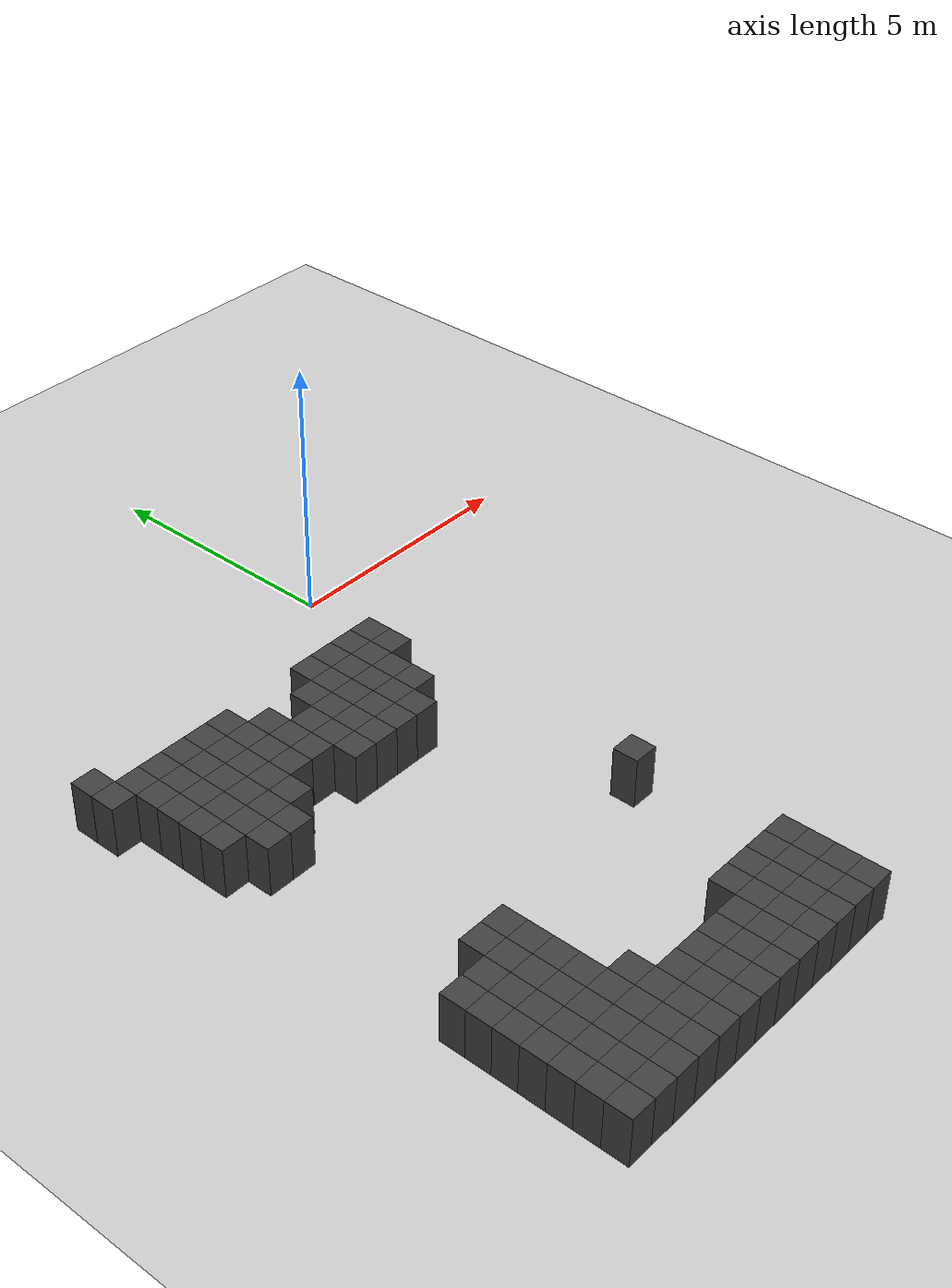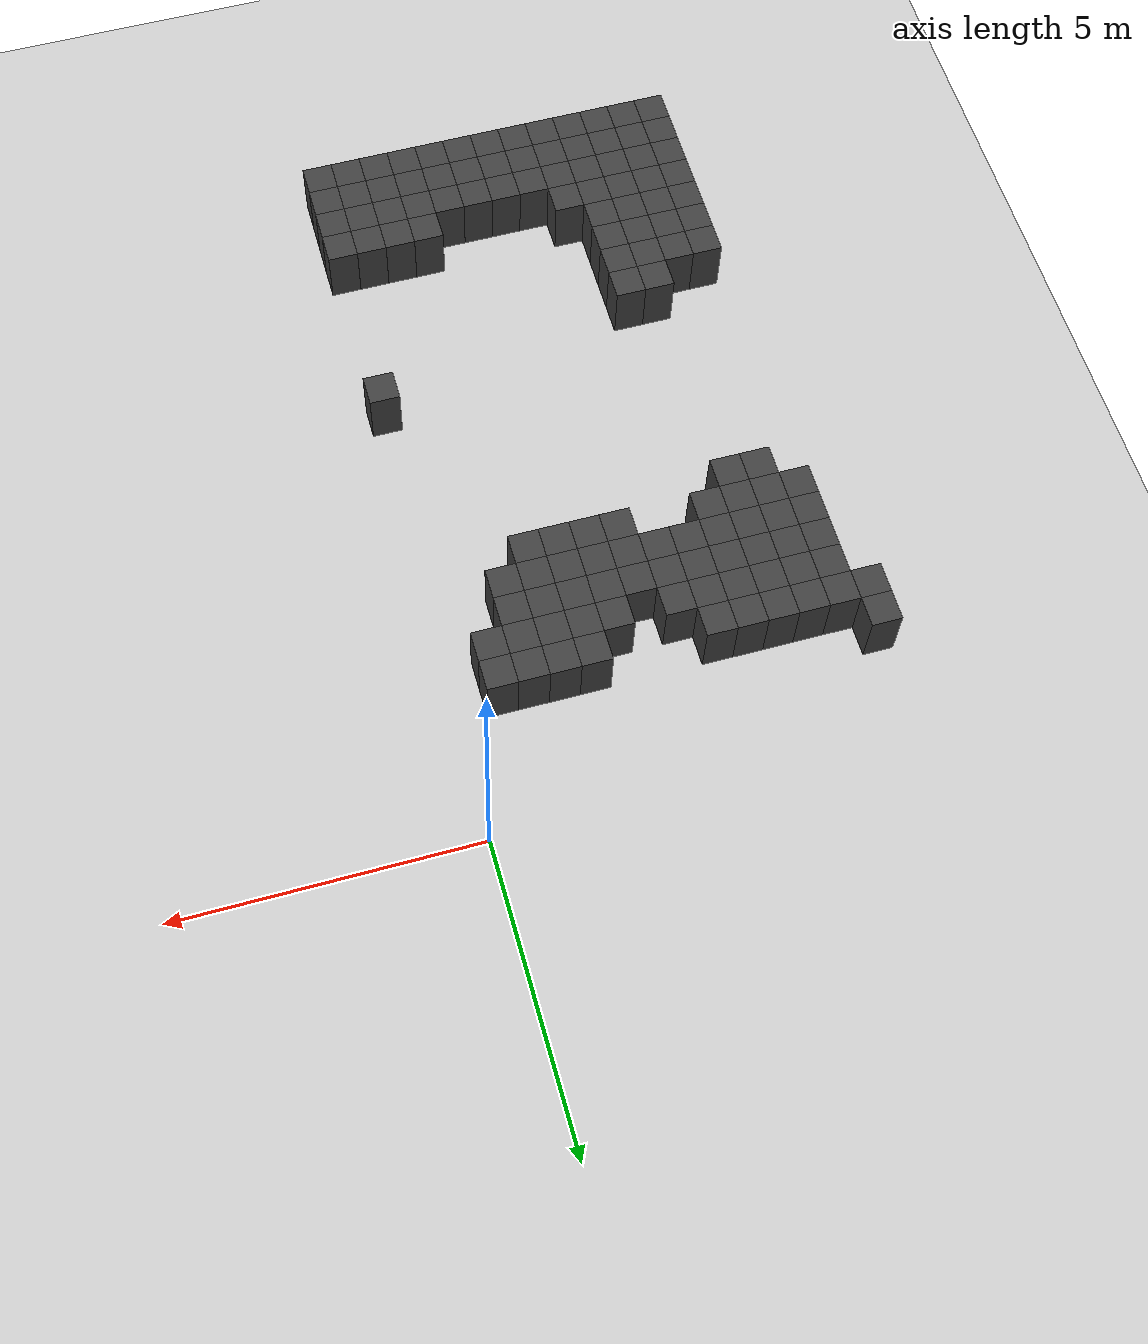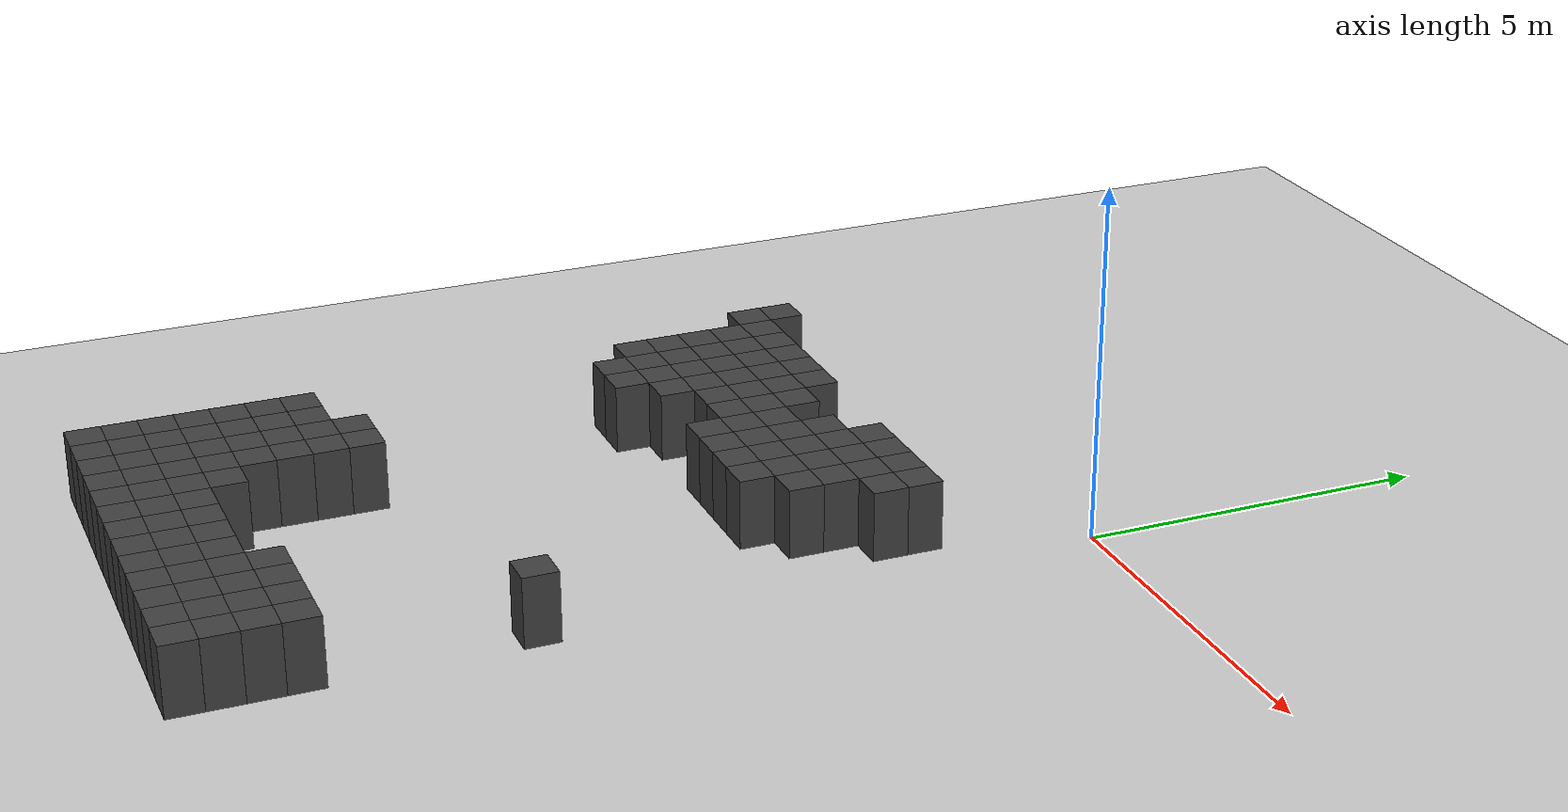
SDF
<sdf version="1.7">
 <world name="map_9061">
  <model name="ground_plane">
   <static>true</static>
   <link name="link">
    <collision name="collision">
     <geometry><plane><normal>0 0 1</normal><size>200 200</size></plane></geometry>
    </collision>
    <visual name="visual">
     <geometry><plane><normal>0 0 1</normal><size>200 200</size></plane></geometry>
     <material><ambient>0.8 0.8 0.8 1</ambient><diffuse>0.8 0.8 0.8 1</diffuse></material>
    </visual>
   </link>
  </model>
  <model name="maze_environment">
   <static>true</static>
   <link name="wall_474">
    <pose>-6.750 -1.750 0.500 0 0 0</pose>
    <collision name="col"><geometry><box><size>0.5 0.5 1.0</size></box></geometry></collision>
    <visual name="vis">
     <geometry><box><size>0.5 0.5 1.0</size></box></geometry>
     <material><ambient>0.15 0.15 0.15 1</ambient><diffuse>0.25 0.25 0.25 1</diffuse></material>
    </visual>
   </link>
   <link name="wall_488">
    <pose>-6.750 -2.250 0.500 0 0 0</pose>
    <collision name="col"><geometry><box><size>0.5 0.5 1.0</size></box></geometry></collision>
    <visual name="vis">
     <geometry><box><size>0.5 0.5 1.0</size></box></geometry>
     <material><ambient>0.15 0.15 0.15 1</ambient><diffuse>0.25 0.25 0.25 1</diffuse></material>
    </visual>
   </link>
   <link name="wall_489">
    <pose>-6.250 -2.250 0.500 0 0 0</pose>
    <collision name="col"><geometry><box><size>0.5 0.5 1.0</size></box></geometry></collision>
    <visual name="vis">
     <geometry><box><size>0.5 0.5 1.0</size></box></geometry>
     <material><ambient>0.15 0.15 0.15 1</ambient><diffuse>0.25 0.25 0.25 1</diffuse></material>
    </visual>
   </link>
   <link name="wall_490">
    <pose>-5.750 -2.250 0.500 0 0 0</pose>
    <collision name="col"><geometry><box><size>0.5 0.5 1.0</size></box></geometry></collision>
    <visual name="vis">
     <geometry><box><size>0.5 0.5 1.0</size></box></geometry>
     <material><ambient>0.15 0.15 0.15 1</ambient><diffuse>0.25 0.25 0.25 1</diffuse></material>
    </visual>
   </link>
   <link name="wall_491">
    <pose>-5.250 -2.250 0.500 0 0 0</pose>
    <collision name="col"><geometry><box><size>0.5 0.5 1.0</size></box></geometry></collision>
    <visual name="vis">
     <geometry><box><size>0.5 0.5 1.0</size></box></geometry>
     <material><ambient>0.15 0.15 0.15 1</ambient><diffuse>0.25 0.25 0.25 1</diffuse></material>
    </visual>
   </link>
   <link name="wall_492">
    <pose>-4.750 -2.250 0.500 0 0 0</pose>
    <collision name="col"><geometry><box><size>0.5 0.5 1.0</size></box></geometry></collision>
    <visual name="vis">
     <geometry><box><size>0.5 0.5 1.0</size></box></geometry>
     <material><ambient>0.15 0.15 0.15 1</ambient><diffuse>0.25 0.25 0.25 1</diffuse></material>
    </visual>
   </link>
   <link name="wall_493">
    <pose>-4.250 -2.250 0.500 0 0 0</pose>
    <collision name="col"><geometry><box><size>0.5 0.5 1.0</size></box></geometry></collision>
    <visual name="vis">
     <geometry><box><size>0.5 0.5 1.0</size></box></geometry>
     <material><ambient>0.15 0.15 0.15 1</ambient><diffuse>0.25 0.25 0.25 1</diffuse></material>
    </visual>
   </link>
   <link name="wall_494">
    <pose>-2.250 -2.250 0.500 0 0 0</pose>
    <collision name="col"><geometry><box><size>0.5 0.5 1.0</size></box></geometry></collision>
    <visual name="vis">
     <geometry><box><size>0.5 0.5 1.0</size></box></geometry>
     <material><ambient>0.15 0.15 0.15 1</ambient><diffuse>0.25 0.25 0.25 1</diffuse></material>
    </visual>
   </link>
   <link name="wall_495">
    <pose>-1.750 -2.250 0.500 0 0 0</pose>
    <collision name="col"><geometry><box><size>0.5 0.5 1.0</size></box></geometry></collision>
    <visual name="vis">
     <geometry><box><size>0.5 0.5 1.0</size></box></geometry>
     <material><ambient>0.15 0.15 0.15 1</ambient><diffuse>0.25 0.25 0.25 1</diffuse></material>
    </visual>
   </link>
   <link name="wall_496">
    <pose>-1.250 -2.250 0.500 0 0 0</pose>
    <collision name="col"><geometry><box><size>0.5 0.5 1.0</size></box></geometry></collision>
    <visual name="vis">
     <geometry><box><size>0.5 0.5 1.0</size></box></geometry>
     <material><ambient>0.15 0.15 0.15 1</ambient><diffuse>0.25 0.25 0.25 1</diffuse></material>
    </visual>
   </link>
   <link name="wall_497">
    <pose>-0.750 -2.250 0.500 0 0 0</pose>
    <collision name="col"><geometry><box><size>0.5 0.5 1.0</size></box></geometry></collision>
    <visual name="vis">
     <geometry><box><size>0.5 0.5 1.0</size></box></geometry>
     <material><ambient>0.15 0.15 0.15 1</ambient><diffuse>0.25 0.25 0.25 1</diffuse></material>
    </visual>
   </link>
   <link name="wall_513">
    <pose>-6.250 -2.750 0.500 0 0 0</pose>
    <collision name="col"><geometry><box><size>0.5 0.5 1.0</size></box></geometry></collision>
    <visual name="vis">
     <geometry><box><size>0.5 0.5 1.0</size></box></geometry>
     <material><ambient>0.15 0.15 0.15 1</ambient><diffuse>0.25 0.25 0.25 1</diffuse></material>
    </visual>
   </link>
   <link name="wall_514">
    <pose>-5.750 -2.750 0.500 0 0 0</pose>
    <collision name="col"><geometry><box><size>0.5 0.5 1.0</size></box></geometry></collision>
    <visual name="vis">
     <geometry><box><size>0.5 0.5 1.0</size></box></geometry>
     <material><ambient>0.15 0.15 0.15 1</ambient><diffuse>0.25 0.25 0.25 1</diffuse></material>
    </visual>
   </link>
   <link name="wall_515">
    <pose>-5.250 -2.750 0.500 0 0 0</pose>
    <collision name="col"><geometry><box><size>0.5 0.5 1.0</size></box></geometry></collision>
    <visual name="vis">
     <geometry><box><size>0.5 0.5 1.0</size></box></geometry>
     <material><ambient>0.15 0.15 0.15 1</ambient><diffuse>0.25 0.25 0.25 1</diffuse></material>
    </visual>
   </link>
   <link name="wall_516">
    <pose>-4.750 -2.750 0.500 0 0 0</pose>
    <collision name="col"><geometry><box><size>0.5 0.5 1.0</size></box></geometry></collision>
    <visual name="vis">
     <geometry><box><size>0.5 0.5 1.0</size></box></geometry>
     <material><ambient>0.15 0.15 0.15 1</ambient><diffuse>0.25 0.25 0.25 1</diffuse></material>
    </visual>
   </link>
   <link name="wall_517">
    <pose>-4.250 -2.750 0.500 0 0 0</pose>
    <collision name="col"><geometry><box><size>0.5 0.5 1.0</size></box></geometry></collision>
    <visual name="vis">
     <geometry><box><size>0.5 0.5 1.0</size></box></geometry>
     <material><ambient>0.15 0.15 0.15 1</ambient><diffuse>0.25 0.25 0.25 1</diffuse></material>
    </visual>
   </link>
   <link name="wall_518">
    <pose>-3.750 -2.750 0.500 0 0 0</pose>
    <collision name="col"><geometry><box><size>0.5 0.5 1.0</size></box></geometry></collision>
    <visual name="vis">
     <geometry><box><size>0.5 0.5 1.0</size></box></geometry>
     <material><ambient>0.15 0.15 0.15 1</ambient><diffuse>0.25 0.25 0.25 1</diffuse></material>
    </visual>
   </link>
   <link name="wall_519">
    <pose>-2.750 -2.750 0.500 0 0 0</pose>
    <collision name="col"><geometry><box><size>0.5 0.5 1.0</size></box></geometry></collision>
    <visual name="vis">
     <geometry><box><size>0.5 0.5 1.0</size></box></geometry>
     <material><ambient>0.15 0.15 0.15 1</ambient><diffuse>0.25 0.25 0.25 1</diffuse></material>
    </visual>
   </link>
   <link name="wall_520">
    <pose>-2.250 -2.750 0.500 0 0 0</pose>
    <collision name="col"><geometry><box><size>0.5 0.5 1.0</size></box></geometry></collision>
    <visual name="vis">
     <geometry><box><size>0.5 0.5 1.0</size></box></geometry>
     <material><ambient>0.15 0.15 0.15 1</ambient><diffuse>0.25 0.25 0.25 1</diffuse></material>
    </visual>
   </link>
   <link name="wall_521">
    <pose>-1.750 -2.750 0.500 0 0 0</pose>
    <collision name="col"><geometry><box><size>0.5 0.5 1.0</size></box></geometry></collision>
    <visual name="vis">
     <geometry><box><size>0.5 0.5 1.0</size></box></geometry>
     <material><ambient>0.15 0.15 0.15 1</ambient><diffuse>0.25 0.25 0.25 1</diffuse></material>
    </visual>
   </link>
   <link name="wall_522">
    <pose>-1.250 -2.750 0.500 0 0 0</pose>
    <collision name="col"><geometry><box><size>0.5 0.5 1.0</size></box></geometry></collision>
    <visual name="vis">
     <geometry><box><size>0.5 0.5 1.0</size></box></geometry>
     <material><ambient>0.15 0.15 0.15 1</ambient><diffuse>0.25 0.25 0.25 1</diffuse></material>
    </visual>
   </link>
   <link name="wall_523">
    <pose>-0.750 -2.750 0.500 0 0 0</pose>
    <collision name="col"><geometry><box><size>0.5 0.5 1.0</size></box></geometry></collision>
    <visual name="vis">
     <geometry><box><size>0.5 0.5 1.0</size></box></geometry>
     <material><ambient>0.15 0.15 0.15 1</ambient><diffuse>0.25 0.25 0.25 1</diffuse></material>
    </visual>
   </link>
   <link name="wall_544">
    <pose>-6.250 -3.250 0.500 0 0 0</pose>
    <collision name="col"><geometry><box><size>0.5 0.5 1.0</size></box></geometry></collision>
    <visual name="vis">
     <geometry><box><size>0.5 0.5 1.0</size></box></geometry>
     <material><ambient>0.15 0.15 0.15 1</ambient><diffuse>0.25 0.25 0.25 1</diffuse></material>
    </visual>
   </link>
   <link name="wall_545">
    <pose>-5.750 -3.250 0.500 0 0 0</pose>
    <collision name="col"><geometry><box><size>0.5 0.5 1.0</size></box></geometry></collision>
    <visual name="vis">
     <geometry><box><size>0.5 0.5 1.0</size></box></geometry>
     <material><ambient>0.15 0.15 0.15 1</ambient><diffuse>0.25 0.25 0.25 1</diffuse></material>
    </visual>
   </link>
   <link name="wall_546">
    <pose>-5.250 -3.250 0.500 0 0 0</pose>
    <collision name="col"><geometry><box><size>0.5 0.5 1.0</size></box></geometry></collision>
    <visual name="vis">
     <geometry><box><size>0.5 0.5 1.0</size></box></geometry>
     <material><ambient>0.15 0.15 0.15 1</ambient><diffuse>0.25 0.25 0.25 1</diffuse></material>
    </visual>
   </link>
   <link name="wall_547">
    <pose>-4.750 -3.250 0.500 0 0 0</pose>
    <collision name="col"><geometry><box><size>0.5 0.5 1.0</size></box></geometry></collision>
    <visual name="vis">
     <geometry><box><size>0.5 0.5 1.0</size></box></geometry>
     <material><ambient>0.15 0.15 0.15 1</ambient><diffuse>0.25 0.25 0.25 1</diffuse></material>
    </visual>
   </link>
   <link name="wall_548">
    <pose>-4.250 -3.250 0.500 0 0 0</pose>
    <collision name="col"><geometry><box><size>0.5 0.5 1.0</size></box></geometry></collision>
    <visual name="vis">
     <geometry><box><size>0.5 0.5 1.0</size></box></geometry>
     <material><ambient>0.15 0.15 0.15 1</ambient><diffuse>0.25 0.25 0.25 1</diffuse></material>
    </visual>
   </link>
   <link name="wall_549">
    <pose>-3.750 -3.250 0.500 0 0 0</pose>
    <collision name="col"><geometry><box><size>0.5 0.5 1.0</size></box></geometry></collision>
    <visual name="vis">
     <geometry><box><size>0.5 0.5 1.0</size></box></geometry>
     <material><ambient>0.15 0.15 0.15 1</ambient><diffuse>0.25 0.25 0.25 1</diffuse></material>
    </visual>
   </link>
   <link name="wall_550">
    <pose>-3.250 -3.250 0.500 0 0 0</pose>
    <collision name="col"><geometry><box><size>0.5 0.5 1.0</size></box></geometry></collision>
    <visual name="vis">
     <geometry><box><size>0.5 0.5 1.0</size></box></geometry>
     <material><ambient>0.15 0.15 0.15 1</ambient><diffuse>0.25 0.25 0.25 1</diffuse></material>
    </visual>
   </link>
   <link name="wall_551">
    <pose>-2.750 -3.250 0.500 0 0 0</pose>
    <collision name="col"><geometry><box><size>0.5 0.5 1.0</size></box></geometry></collision>
    <visual name="vis">
     <geometry><box><size>0.5 0.5 1.0</size></box></geometry>
     <material><ambient>0.15 0.15 0.15 1</ambient><diffuse>0.25 0.25 0.25 1</diffuse></material>
    </visual>
   </link>
   <link name="wall_552">
    <pose>-2.250 -3.250 0.500 0 0 0</pose>
    <collision name="col"><geometry><box><size>0.5 0.5 1.0</size></box></geometry></collision>
    <visual name="vis">
     <geometry><box><size>0.5 0.5 1.0</size></box></geometry>
     <material><ambient>0.15 0.15 0.15 1</ambient><diffuse>0.25 0.25 0.25 1</diffuse></material>
    </visual>
   </link>
   <link name="wall_553">
    <pose>-1.750 -3.250 0.500 0 0 0</pose>
    <collision name="col"><geometry><box><size>0.5 0.5 1.0</size></box></geometry></collision>
    <visual name="vis">
     <geometry><box><size>0.5 0.5 1.0</size></box></geometry>
     <material><ambient>0.15 0.15 0.15 1</ambient><diffuse>0.25 0.25 0.25 1</diffuse></material>
    </visual>
   </link>
   <link name="wall_554">
    <pose>-1.250 -3.250 0.500 0 0 0</pose>
    <collision name="col"><geometry><box><size>0.5 0.5 1.0</size></box></geometry></collision>
    <visual name="vis">
     <geometry><box><size>0.5 0.5 1.0</size></box></geometry>
     <material><ambient>0.15 0.15 0.15 1</ambient><diffuse>0.25 0.25 0.25 1</diffuse></material>
    </visual>
   </link>
   <link name="wall_573">
    <pose>-6.250 -3.750 0.500 0 0 0</pose>
    <collision name="col"><geometry><box><size>0.5 0.5 1.0</size></box></geometry></collision>
    <visual name="vis">
     <geometry><box><size>0.5 0.5 1.0</size></box></geometry>
     <material><ambient>0.15 0.15 0.15 1</ambient><diffuse>0.25 0.25 0.25 1</diffuse></material>
    </visual>
   </link>
   <link name="wall_574">
    <pose>-5.750 -3.750 0.500 0 0 0</pose>
    <collision name="col"><geometry><box><size>0.5 0.5 1.0</size></box></geometry></collision>
    <visual name="vis">
     <geometry><box><size>0.5 0.5 1.0</size></box></geometry>
     <material><ambient>0.15 0.15 0.15 1</ambient><diffuse>0.25 0.25 0.25 1</diffuse></material>
    </visual>
   </link>
   <link name="wall_575">
    <pose>-5.250 -3.750 0.500 0 0 0</pose>
    <collision name="col"><geometry><box><size>0.5 0.5 1.0</size></box></geometry></collision>
    <visual name="vis">
     <geometry><box><size>0.5 0.5 1.0</size></box></geometry>
     <material><ambient>0.15 0.15 0.15 1</ambient><diffuse>0.25 0.25 0.25 1</diffuse></material>
    </visual>
   </link>
   <link name="wall_576">
    <pose>-4.750 -3.750 0.500 0 0 0</pose>
    <collision name="col"><geometry><box><size>0.5 0.5 1.0</size></box></geometry></collision>
    <visual name="vis">
     <geometry><box><size>0.5 0.5 1.0</size></box></geometry>
     <material><ambient>0.15 0.15 0.15 1</ambient><diffuse>0.25 0.25 0.25 1</diffuse></material>
    </visual>
   </link>
   <link name="wall_577">
    <pose>-4.250 -3.750 0.500 0 0 0</pose>
    <collision name="col"><geometry><box><size>0.5 0.5 1.0</size></box></geometry></collision>
    <visual name="vis">
     <geometry><box><size>0.5 0.5 1.0</size></box></geometry>
     <material><ambient>0.15 0.15 0.15 1</ambient><diffuse>0.25 0.25 0.25 1</diffuse></material>
    </visual>
   </link>
   <link name="wall_578">
    <pose>-3.750 -3.750 0.500 0 0 0</pose>
    <collision name="col"><geometry><box><size>0.5 0.5 1.0</size></box></geometry></collision>
    <visual name="vis">
     <geometry><box><size>0.5 0.5 1.0</size></box></geometry>
     <material><ambient>0.15 0.15 0.15 1</ambient><diffuse>0.25 0.25 0.25 1</diffuse></material>
    </visual>
   </link>
   <link name="wall_579">
    <pose>-3.250 -3.750 0.500 0 0 0</pose>
    <collision name="col"><geometry><box><size>0.5 0.5 1.0</size></box></geometry></collision>
    <visual name="vis">
     <geometry><box><size>0.5 0.5 1.0</size></box></geometry>
     <material><ambient>0.15 0.15 0.15 1</ambient><diffuse>0.25 0.25 0.25 1</diffuse></material>
    </visual>
   </link>
   <link name="wall_580">
    <pose>-2.750 -3.750 0.500 0 0 0</pose>
    <collision name="col"><geometry><box><size>0.5 0.5 1.0</size></box></geometry></collision>
    <visual name="vis">
     <geometry><box><size>0.5 0.5 1.0</size></box></geometry>
     <material><ambient>0.15 0.15 0.15 1</ambient><diffuse>0.25 0.25 0.25 1</diffuse></material>
    </visual>
   </link>
   <link name="wall_581">
    <pose>-2.250 -3.750 0.500 0 0 0</pose>
    <collision name="col"><geometry><box><size>0.5 0.5 1.0</size></box></geometry></collision>
    <visual name="vis">
     <geometry><box><size>0.5 0.5 1.0</size></box></geometry>
     <material><ambient>0.15 0.15 0.15 1</ambient><diffuse>0.25 0.25 0.25 1</diffuse></material>
    </visual>
   </link>
   <link name="wall_582">
    <pose>-1.750 -3.750 0.500 0 0 0</pose>
    <collision name="col"><geometry><box><size>0.5 0.5 1.0</size></box></geometry></collision>
    <visual name="vis">
     <geometry><box><size>0.5 0.5 1.0</size></box></geometry>
     <material><ambient>0.15 0.15 0.15 1</ambient><diffuse>0.25 0.25 0.25 1</diffuse></material>
    </visual>
   </link>
   <link name="wall_583">
    <pose>-1.250 -3.750 0.500 0 0 0</pose>
    <collision name="col"><geometry><box><size>0.5 0.5 1.0</size></box></geometry></collision>
    <visual name="vis">
     <geometry><box><size>0.5 0.5 1.0</size></box></geometry>
     <material><ambient>0.15 0.15 0.15 1</ambient><diffuse>0.25 0.25 0.25 1</diffuse></material>
    </visual>
   </link>
   <link name="wall_602">
    <pose>-6.250 -4.250 0.500 0 0 0</pose>
    <collision name="col"><geometry><box><size>0.5 0.5 1.0</size></box></geometry></collision>
    <visual name="vis">
     <geometry><box><size>0.5 0.5 1.0</size></box></geometry>
     <material><ambient>0.15 0.15 0.15 1</ambient><diffuse>0.25 0.25 0.25 1</diffuse></material>
    </visual>
   </link>
   <link name="wall_603">
    <pose>-5.750 -4.250 0.500 0 0 0</pose>
    <collision name="col"><geometry><box><size>0.5 0.5 1.0</size></box></geometry></collision>
    <visual name="vis">
     <geometry><box><size>0.5 0.5 1.0</size></box></geometry>
     <material><ambient>0.15 0.15 0.15 1</ambient><diffuse>0.25 0.25 0.25 1</diffuse></material>
    </visual>
   </link>
   <link name="wall_604">
    <pose>-5.250 -4.250 0.500 0 0 0</pose>
    <collision name="col"><geometry><box><size>0.5 0.5 1.0</size></box></geometry></collision>
    <visual name="vis">
     <geometry><box><size>0.5 0.5 1.0</size></box></geometry>
     <material><ambient>0.15 0.15 0.15 1</ambient><diffuse>0.25 0.25 0.25 1</diffuse></material>
    </visual>
   </link>
   <link name="wall_605">
    <pose>-4.750 -4.250 0.500 0 0 0</pose>
    <collision name="col"><geometry><box><size>0.5 0.5 1.0</size></box></geometry></collision>
    <visual name="vis">
     <geometry><box><size>0.5 0.5 1.0</size></box></geometry>
     <material><ambient>0.15 0.15 0.15 1</ambient><diffuse>0.25 0.25 0.25 1</diffuse></material>
    </visual>
   </link>
   <link name="wall_606">
    <pose>-3.250 -4.250 0.500 0 0 0</pose>
    <collision name="col"><geometry><box><size>0.5 0.5 1.0</size></box></geometry></collision>
    <visual name="vis">
     <geometry><box><size>0.5 0.5 1.0</size></box></geometry>
     <material><ambient>0.15 0.15 0.15 1</ambient><diffuse>0.25 0.25 0.25 1</diffuse></material>
    </visual>
   </link>
   <link name="wall_607">
    <pose>-2.750 -4.250 0.500 0 0 0</pose>
    <collision name="col"><geometry><box><size>0.5 0.5 1.0</size></box></geometry></collision>
    <visual name="vis">
     <geometry><box><size>0.5 0.5 1.0</size></box></geometry>
     <material><ambient>0.15 0.15 0.15 1</ambient><diffuse>0.25 0.25 0.25 1</diffuse></material>
    </visual>
   </link>
   <link name="wall_608">
    <pose>-2.250 -4.250 0.500 0 0 0</pose>
    <collision name="col"><geometry><box><size>0.5 0.5 1.0</size></box></geometry></collision>
    <visual name="vis">
     <geometry><box><size>0.5 0.5 1.0</size></box></geometry>
     <material><ambient>0.15 0.15 0.15 1</ambient><diffuse>0.25 0.25 0.25 1</diffuse></material>
    </visual>
   </link>
   <link name="wall_609">
    <pose>-1.750 -4.250 0.500 0 0 0</pose>
    <collision name="col"><geometry><box><size>0.5 0.5 1.0</size></box></geometry></collision>
    <visual name="vis">
     <geometry><box><size>0.5 0.5 1.0</size></box></geometry>
     <material><ambient>0.15 0.15 0.15 1</ambient><diffuse>0.25 0.25 0.25 1</diffuse></material>
    </visual>
   </link>
   <link name="wall_628">
    <pose>-5.750 -4.750 0.500 0 0 0</pose>
    <collision name="col"><geometry><box><size>0.5 0.5 1.0</size></box></geometry></collision>
    <visual name="vis">
     <geometry><box><size>0.5 0.5 1.0</size></box></geometry>
     <material><ambient>0.15 0.15 0.15 1</ambient><diffuse>0.25 0.25 0.25 1</diffuse></material>
    </visual>
   </link>
   <link name="wall_629">
    <pose>-5.250 -4.750 0.500 0 0 0</pose>
    <collision name="col"><geometry><box><size>0.5 0.5 1.0</size></box></geometry></collision>
    <visual name="vis">
     <geometry><box><size>0.5 0.5 1.0</size></box></geometry>
     <material><ambient>0.15 0.15 0.15 1</ambient><diffuse>0.25 0.25 0.25 1</diffuse></material>
    </visual>
   </link>
   <link name="wall_729">
    <pose>-0.250 -7.750 0.500 0 0 0</pose>
    <collision name="col"><geometry><box><size>0.5 0.5 1.0</size></box></geometry></collision>
    <visual name="vis">
     <geometry><box><size>0.5 0.5 1.0</size></box></geometry>
     <material><ambient>0.15 0.15 0.15 1</ambient><diffuse>0.25 0.25 0.25 1</diffuse></material>
    </visual>
   </link>
   <link name="wall_749">
    <pose>-5.250 -8.750 0.500 0 0 0</pose>
    <collision name="col"><geometry><box><size>0.5 0.5 1.0</size></box></geometry></collision>
    <visual name="vis">
     <geometry><box><size>0.5 0.5 1.0</size></box></geometry>
     <material><ambient>0.15 0.15 0.15 1</ambient><diffuse>0.25 0.25 0.25 1</diffuse></material>
    </visual>
   </link>
   <link name="wall_750">
    <pose>-4.750 -8.750 0.500 0 0 0</pose>
    <collision name="col"><geometry><box><size>0.5 0.5 1.0</size></box></geometry></collision>
    <visual name="vis">
     <geometry><box><size>0.5 0.5 1.0</size></box></geometry>
     <material><ambient>0.15 0.15 0.15 1</ambient><diffuse>0.25 0.25 0.25 1</diffuse></material>
    </visual>
   </link>
   <link name="wall_763">
    <pose>-6.250 -9.250 0.500 0 0 0</pose>
    <collision name="col"><geometry><box><size>0.5 0.5 1.0</size></box></geometry></collision>
    <visual name="vis">
     <geometry><box><size>0.5 0.5 1.0</size></box></geometry>
     <material><ambient>0.15 0.15 0.15 1</ambient><diffuse>0.25 0.25 0.25 1</diffuse></material>
    </visual>
   </link>
   <link name="wall_764">
    <pose>-5.750 -9.250 0.500 0 0 0</pose>
    <collision name="col"><geometry><box><size>0.5 0.5 1.0</size></box></geometry></collision>
    <visual name="vis">
     <geometry><box><size>0.5 0.5 1.0</size></box></geometry>
     <material><ambient>0.15 0.15 0.15 1</ambient><diffuse>0.25 0.25 0.25 1</diffuse></material>
    </visual>
   </link>
   <link name="wall_765">
    <pose>-5.250 -9.250 0.500 0 0 0</pose>
    <collision name="col"><geometry><box><size>0.5 0.5 1.0</size></box></geometry></collision>
    <visual name="vis">
     <geometry><box><size>0.5 0.5 1.0</size></box></geometry>
     <material><ambient>0.15 0.15 0.15 1</ambient><diffuse>0.25 0.25 0.25 1</diffuse></material>
    </visual>
   </link>
   <link name="wall_766">
    <pose>-4.750 -9.250 0.500 0 0 0</pose>
    <collision name="col"><geometry><box><size>0.5 0.5 1.0</size></box></geometry></collision>
    <visual name="vis">
     <geometry><box><size>0.5 0.5 1.0</size></box></geometry>
     <material><ambient>0.15 0.15 0.15 1</ambient><diffuse>0.25 0.25 0.25 1</diffuse></material>
    </visual>
   </link>
   <link name="wall_780">
    <pose>-6.250 -9.750 0.500 0 0 0</pose>
    <collision name="col"><geometry><box><size>0.5 0.5 1.0</size></box></geometry></collision>
    <visual name="vis">
     <geometry><box><size>0.5 0.5 1.0</size></box></geometry>
     <material><ambient>0.15 0.15 0.15 1</ambient><diffuse>0.25 0.25 0.25 1</diffuse></material>
    </visual>
   </link>
   <link name="wall_781">
    <pose>-5.750 -9.750 0.500 0 0 0</pose>
    <collision name="col"><geometry><box><size>0.5 0.5 1.0</size></box></geometry></collision>
    <visual name="vis">
     <geometry><box><size>0.5 0.5 1.0</size></box></geometry>
     <material><ambient>0.15 0.15 0.15 1</ambient><diffuse>0.25 0.25 0.25 1</diffuse></material>
    </visual>
   </link>
   <link name="wall_782">
    <pose>-5.250 -9.750 0.500 0 0 0</pose>
    <collision name="col"><geometry><box><size>0.5 0.5 1.0</size></box></geometry></collision>
    <visual name="vis">
     <geometry><box><size>0.5 0.5 1.0</size></box></geometry>
     <material><ambient>0.15 0.15 0.15 1</ambient><diffuse>0.25 0.25 0.25 1</diffuse></material>
    </visual>
   </link>
   <link name="wall_783">
    <pose>-4.750 -9.750 0.500 0 0 0</pose>
    <collision name="col"><geometry><box><size>0.5 0.5 1.0</size></box></geometry></collision>
    <visual name="vis">
     <geometry><box><size>0.5 0.5 1.0</size></box></geometry>
     <material><ambient>0.15 0.15 0.15 1</ambient><diffuse>0.25 0.25 0.25 1</diffuse></material>
    </visual>
   </link>
   <link name="wall_796">
    <pose>-6.250 -10.250 0.500 0 0 0</pose>
    <collision name="col"><geometry><box><size>0.5 0.5 1.0</size></box></geometry></collision>
    <visual name="vis">
     <geometry><box><size>0.5 0.5 1.0</size></box></geometry>
     <material><ambient>0.15 0.15 0.15 1</ambient><diffuse>0.25 0.25 0.25 1</diffuse></material>
    </visual>
   </link>
   <link name="wall_797">
    <pose>-5.750 -10.250 0.500 0 0 0</pose>
    <collision name="col"><geometry><box><size>0.5 0.5 1.0</size></box></geometry></collision>
    <visual name="vis">
     <geometry><box><size>0.5 0.5 1.0</size></box></geometry>
     <material><ambient>0.15 0.15 0.15 1</ambient><diffuse>0.25 0.25 0.25 1</diffuse></material>
    </visual>
   </link>
   <link name="wall_798">
    <pose>-5.250 -10.250 0.500 0 0 0</pose>
    <collision name="col"><geometry><box><size>0.5 0.5 1.0</size></box></geometry></collision>
    <visual name="vis">
     <geometry><box><size>0.5 0.5 1.0</size></box></geometry>
     <material><ambient>0.15 0.15 0.15 1</ambient><diffuse>0.25 0.25 0.25 1</diffuse></material>
    </visual>
   </link>
   <link name="wall_799">
    <pose>-4.750 -10.250 0.500 0 0 0</pose>
    <collision name="col"><geometry><box><size>0.5 0.5 1.0</size></box></geometry></collision>
    <visual name="vis">
     <geometry><box><size>0.5 0.5 1.0</size></box></geometry>
     <material><ambient>0.15 0.15 0.15 1</ambient><diffuse>0.25 0.25 0.25 1</diffuse></material>
    </visual>
   </link>
   <link name="wall_812">
    <pose>-6.250 -10.750 0.500 0 0 0</pose>
    <collision name="col"><geometry><box><size>0.5 0.5 1.0</size></box></geometry></collision>
    <visual name="vis">
     <geometry><box><size>0.5 0.5 1.0</size></box></geometry>
     <material><ambient>0.15 0.15 0.15 1</ambient><diffuse>0.25 0.25 0.25 1</diffuse></material>
    </visual>
   </link>
   <link name="wall_813">
    <pose>-5.750 -10.750 0.500 0 0 0</pose>
    <collision name="col"><geometry><box><size>0.5 0.5 1.0</size></box></geometry></collision>
    <visual name="vis">
     <geometry><box><size>0.5 0.5 1.0</size></box></geometry>
     <material><ambient>0.15 0.15 0.15 1</ambient><diffuse>0.25 0.25 0.25 1</diffuse></material>
    </visual>
   </link>
   <link name="wall_814">
    <pose>-5.250 -10.750 0.500 0 0 0</pose>
    <collision name="col"><geometry><box><size>0.5 0.5 1.0</size></box></geometry></collision>
    <visual name="vis">
     <geometry><box><size>0.5 0.5 1.0</size></box></geometry>
     <material><ambient>0.15 0.15 0.15 1</ambient><diffuse>0.25 0.25 0.25 1</diffuse></material>
    </visual>
   </link>
   <link name="wall_815">
    <pose>-4.750 -10.750 0.500 0 0 0</pose>
    <collision name="col"><geometry><box><size>0.5 0.5 1.0</size></box></geometry></collision>
    <visual name="vis">
     <geometry><box><size>0.5 0.5 1.0</size></box></geometry>
     <material><ambient>0.15 0.15 0.15 1</ambient><diffuse>0.25 0.25 0.25 1</diffuse></material>
    </visual>
   </link>
   <link name="wall_816">
    <pose>-4.250 -10.750 0.500 0 0 0</pose>
    <collision name="col"><geometry><box><size>0.5 0.5 1.0</size></box></geometry></collision>
    <visual name="vis">
     <geometry><box><size>0.5 0.5 1.0</size></box></geometry>
     <material><ambient>0.15 0.15 0.15 1</ambient><diffuse>0.25 0.25 0.25 1</diffuse></material>
    </visual>
   </link>
   <link name="wall_817">
    <pose>-1.750 -10.750 0.500 0 0 0</pose>
    <collision name="col"><geometry><box><size>0.5 0.5 1.0</size></box></geometry></collision>
    <visual name="vis">
     <geometry><box><size>0.5 0.5 1.0</size></box></geometry>
     <material><ambient>0.15 0.15 0.15 1</ambient><diffuse>0.25 0.25 0.25 1</diffuse></material>
    </visual>
   </link>
   <link name="wall_818">
    <pose>-1.250 -10.750 0.500 0 0 0</pose>
    <collision name="col"><geometry><box><size>0.5 0.5 1.0</size></box></geometry></collision>
    <visual name="vis">
     <geometry><box><size>0.5 0.5 1.0</size></box></geometry>
     <material><ambient>0.15 0.15 0.15 1</ambient><diffuse>0.25 0.25 0.25 1</diffuse></material>
    </visual>
   </link>
   <link name="wall_819">
    <pose>-0.750 -10.750 0.500 0 0 0</pose>
    <collision name="col"><geometry><box><size>0.5 0.5 1.0</size></box></geometry></collision>
    <visual name="vis">
     <geometry><box><size>0.5 0.5 1.0</size></box></geometry>
     <material><ambient>0.15 0.15 0.15 1</ambient><diffuse>0.25 0.25 0.25 1</diffuse></material>
    </visual>
   </link>
   <link name="wall_820">
    <pose>-0.250 -10.750 0.500 0 0 0</pose>
    <collision name="col"><geometry><box><size>0.5 0.5 1.0</size></box></geometry></collision>
    <visual name="vis">
     <geometry><box><size>0.5 0.5 1.0</size></box></geometry>
     <material><ambient>0.15 0.15 0.15 1</ambient><diffuse>0.25 0.25 0.25 1</diffuse></material>
    </visual>
   </link>
   <link name="wall_831">
    <pose>-6.250 -11.250 0.500 0 0 0</pose>
    <collision name="col"><geometry><box><size>0.5 0.5 1.0</size></box></geometry></collision>
    <visual name="vis">
     <geometry><box><size>0.5 0.5 1.0</size></box></geometry>
     <material><ambient>0.15 0.15 0.15 1</ambient><diffuse>0.25 0.25 0.25 1</diffuse></material>
    </visual>
   </link>
   <link name="wall_832">
    <pose>-5.750 -11.250 0.500 0 0 0</pose>
    <collision name="col"><geometry><box><size>0.5 0.5 1.0</size></box></geometry></collision>
    <visual name="vis">
     <geometry><box><size>0.5 0.5 1.0</size></box></geometry>
     <material><ambient>0.15 0.15 0.15 1</ambient><diffuse>0.25 0.25 0.25 1</diffuse></material>
    </visual>
   </link>
   <link name="wall_833">
    <pose>-5.250 -11.250 0.500 0 0 0</pose>
    <collision name="col"><geometry><box><size>0.5 0.5 1.0</size></box></geometry></collision>
    <visual name="vis">
     <geometry><box><size>0.5 0.5 1.0</size></box></geometry>
     <material><ambient>0.15 0.15 0.15 1</ambient><diffuse>0.25 0.25 0.25 1</diffuse></material>
    </visual>
   </link>
   <link name="wall_834">
    <pose>-4.750 -11.250 0.500 0 0 0</pose>
    <collision name="col"><geometry><box><size>0.5 0.5 1.0</size></box></geometry></collision>
    <visual name="vis">
     <geometry><box><size>0.5 0.5 1.0</size></box></geometry>
     <material><ambient>0.15 0.15 0.15 1</ambient><diffuse>0.25 0.25 0.25 1</diffuse></material>
    </visual>
   </link>
   <link name="wall_835">
    <pose>-4.250 -11.250 0.500 0 0 0</pose>
    <collision name="col"><geometry><box><size>0.5 0.5 1.0</size></box></geometry></collision>
    <visual name="vis">
     <geometry><box><size>0.5 0.5 1.0</size></box></geometry>
     <material><ambient>0.15 0.15 0.15 1</ambient><diffuse>0.25 0.25 0.25 1</diffuse></material>
    </visual>
   </link>
   <link name="wall_836">
    <pose>-3.750 -11.250 0.500 0 0 0</pose>
    <collision name="col"><geometry><box><size>0.5 0.5 1.0</size></box></geometry></collision>
    <visual name="vis">
     <geometry><box><size>0.5 0.5 1.0</size></box></geometry>
     <material><ambient>0.15 0.15 0.15 1</ambient><diffuse>0.25 0.25 0.25 1</diffuse></material>
    </visual>
   </link>
   <link name="wall_837">
    <pose>-3.250 -11.250 0.500 0 0 0</pose>
    <collision name="col"><geometry><box><size>0.5 0.5 1.0</size></box></geometry></collision>
    <visual name="vis">
     <geometry><box><size>0.5 0.5 1.0</size></box></geometry>
     <material><ambient>0.15 0.15 0.15 1</ambient><diffuse>0.25 0.25 0.25 1</diffuse></material>
    </visual>
   </link>
   <link name="wall_838">
    <pose>-2.750 -11.250 0.500 0 0 0</pose>
    <collision name="col"><geometry><box><size>0.5 0.5 1.0</size></box></geometry></collision>
    <visual name="vis">
     <geometry><box><size>0.5 0.5 1.0</size></box></geometry>
     <material><ambient>0.15 0.15 0.15 1</ambient><diffuse>0.25 0.25 0.25 1</diffuse></material>
    </visual>
   </link>
   <link name="wall_839">
    <pose>-2.250 -11.250 0.500 0 0 0</pose>
    <collision name="col"><geometry><box><size>0.5 0.5 1.0</size></box></geometry></collision>
    <visual name="vis">
     <geometry><box><size>0.5 0.5 1.0</size></box></geometry>
     <material><ambient>0.15 0.15 0.15 1</ambient><diffuse>0.25 0.25 0.25 1</diffuse></material>
    </visual>
   </link>
   <link name="wall_840">
    <pose>-1.750 -11.250 0.500 0 0 0</pose>
    <collision name="col"><geometry><box><size>0.5 0.5 1.0</size></box></geometry></collision>
    <visual name="vis">
     <geometry><box><size>0.5 0.5 1.0</size></box></geometry>
     <material><ambient>0.15 0.15 0.15 1</ambient><diffuse>0.25 0.25 0.25 1</diffuse></material>
    </visual>
   </link>
   <link name="wall_841">
    <pose>-1.250 -11.250 0.500 0 0 0</pose>
    <collision name="col"><geometry><box><size>0.5 0.5 1.0</size></box></geometry></collision>
    <visual name="vis">
     <geometry><box><size>0.5 0.5 1.0</size></box></geometry>
     <material><ambient>0.15 0.15 0.15 1</ambient><diffuse>0.25 0.25 0.25 1</diffuse></material>
    </visual>
   </link>
   <link name="wall_842">
    <pose>-0.750 -11.250 0.500 0 0 0</pose>
    <collision name="col"><geometry><box><size>0.5 0.5 1.0</size></box></geometry></collision>
    <visual name="vis">
     <geometry><box><size>0.5 0.5 1.0</size></box></geometry>
     <material><ambient>0.15 0.15 0.15 1</ambient><diffuse>0.25 0.25 0.25 1</diffuse></material>
    </visual>
   </link>
   <link name="wall_843">
    <pose>-0.250 -11.250 0.500 0 0 0</pose>
    <collision name="col"><geometry><box><size>0.5 0.5 1.0</size></box></geometry></collision>
    <visual name="vis">
     <geometry><box><size>0.5 0.5 1.0</size></box></geometry>
     <material><ambient>0.15 0.15 0.15 1</ambient><diffuse>0.25 0.25 0.25 1</diffuse></material>
    </visual>
   </link>
   <link name="wall_861">
    <pose>-6.250 -11.750 0.500 0 0 0</pose>
    <collision name="col"><geometry><box><size>0.5 0.5 1.0</size></box></geometry></collision>
    <visual name="vis">
     <geometry><box><size>0.5 0.5 1.0</size></box></geometry>
     <material><ambient>0.15 0.15 0.15 1</ambient><diffuse>0.25 0.25 0.25 1</diffuse></material>
    </visual>
   </link>
   <link name="wall_862">
    <pose>-5.750 -11.750 0.500 0 0 0</pose>
    <collision name="col"><geometry><box><size>0.5 0.5 1.0</size></box></geometry></collision>
    <visual name="vis">
     <geometry><box><size>0.5 0.5 1.0</size></box></geometry>
     <material><ambient>0.15 0.15 0.15 1</ambient><diffuse>0.25 0.25 0.25 1</diffuse></material>
    </visual>
   </link>
   <link name="wall_863">
    <pose>-5.250 -11.750 0.500 0 0 0</pose>
    <collision name="col"><geometry><box><size>0.5 0.5 1.0</size></box></geometry></collision>
    <visual name="vis">
     <geometry><box><size>0.5 0.5 1.0</size></box></geometry>
     <material><ambient>0.15 0.15 0.15 1</ambient><diffuse>0.25 0.25 0.25 1</diffuse></material>
    </visual>
   </link>
   <link name="wall_864">
    <pose>-4.750 -11.750 0.500 0 0 0</pose>
    <collision name="col"><geometry><box><size>0.5 0.5 1.0</size></box></geometry></collision>
    <visual name="vis">
     <geometry><box><size>0.5 0.5 1.0</size></box></geometry>
     <material><ambient>0.15 0.15 0.15 1</ambient><diffuse>0.25 0.25 0.25 1</diffuse></material>
    </visual>
   </link>
   <link name="wall_865">
    <pose>-4.250 -11.750 0.500 0 0 0</pose>
    <collision name="col"><geometry><box><size>0.5 0.5 1.0</size></box></geometry></collision>
    <visual name="vis">
     <geometry><box><size>0.5 0.5 1.0</size></box></geometry>
     <material><ambient>0.15 0.15 0.15 1</ambient><diffuse>0.25 0.25 0.25 1</diffuse></material>
    </visual>
   </link>
   <link name="wall_866">
    <pose>-3.750 -11.750 0.500 0 0 0</pose>
    <collision name="col"><geometry><box><size>0.5 0.5 1.0</size></box></geometry></collision>
    <visual name="vis">
     <geometry><box><size>0.5 0.5 1.0</size></box></geometry>
     <material><ambient>0.15 0.15 0.15 1</ambient><diffuse>0.25 0.25 0.25 1</diffuse></material>
    </visual>
   </link>
   <link name="wall_867">
    <pose>-3.250 -11.750 0.500 0 0 0</pose>
    <collision name="col"><geometry><box><size>0.5 0.5 1.0</size></box></geometry></collision>
    <visual name="vis">
     <geometry><box><size>0.5 0.5 1.0</size></box></geometry>
     <material><ambient>0.15 0.15 0.15 1</ambient><diffuse>0.25 0.25 0.25 1</diffuse></material>
    </visual>
   </link>
   <link name="wall_868">
    <pose>-2.750 -11.750 0.500 0 0 0</pose>
    <collision name="col"><geometry><box><size>0.5 0.5 1.0</size></box></geometry></collision>
    <visual name="vis">
     <geometry><box><size>0.5 0.5 1.0</size></box></geometry>
     <material><ambient>0.15 0.15 0.15 1</ambient><diffuse>0.25 0.25 0.25 1</diffuse></material>
    </visual>
   </link>
   <link name="wall_869">
    <pose>-2.250 -11.750 0.500 0 0 0</pose>
    <collision name="col"><geometry><box><size>0.5 0.5 1.0</size></box></geometry></collision>
    <visual name="vis">
     <geometry><box><size>0.5 0.5 1.0</size></box></geometry>
     <material><ambient>0.15 0.15 0.15 1</ambient><diffuse>0.25 0.25 0.25 1</diffuse></material>
    </visual>
   </link>
   <link name="wall_870">
    <pose>-1.750 -11.750 0.500 0 0 0</pose>
    <collision name="col"><geometry><box><size>0.5 0.5 1.0</size></box></geometry></collision>
    <visual name="vis">
     <geometry><box><size>0.5 0.5 1.0</size></box></geometry>
     <material><ambient>0.15 0.15 0.15 1</ambient><diffuse>0.25 0.25 0.25 1</diffuse></material>
    </visual>
   </link>
   <link name="wall_871">
    <pose>-1.250 -11.750 0.500 0 0 0</pose>
    <collision name="col"><geometry><box><size>0.5 0.5 1.0</size></box></geometry></collision>
    <visual name="vis">
     <geometry><box><size>0.5 0.5 1.0</size></box></geometry>
     <material><ambient>0.15 0.15 0.15 1</ambient><diffuse>0.25 0.25 0.25 1</diffuse></material>
    </visual>
   </link>
   <link name="wall_872">
    <pose>-0.750 -11.750 0.500 0 0 0</pose>
    <collision name="col"><geometry><box><size>0.5 0.5 1.0</size></box></geometry></collision>
    <visual name="vis">
     <geometry><box><size>0.5 0.5 1.0</size></box></geometry>
     <material><ambient>0.15 0.15 0.15 1</ambient><diffuse>0.25 0.25 0.25 1</diffuse></material>
    </visual>
   </link>
   <link name="wall_873">
    <pose>-0.250 -11.750 0.500 0 0 0</pose>
    <collision name="col"><geometry><box><size>0.5 0.5 1.0</size></box></geometry></collision>
    <visual name="vis">
     <geometry><box><size>0.5 0.5 1.0</size></box></geometry>
     <material><ambient>0.15 0.15 0.15 1</ambient><diffuse>0.25 0.25 0.25 1</diffuse></material>
    </visual>
   </link>
   <link name="wall_899">
    <pose>-6.250 -12.250 0.500 0 0 0</pose>
    <collision name="col"><geometry><box><size>0.5 0.5 1.0</size></box></geometry></collision>
    <visual name="vis">
     <geometry><box><size>0.5 0.5 1.0</size></box></geometry>
     <material><ambient>0.15 0.15 0.15 1</ambient><diffuse>0.25 0.25 0.25 1</diffuse></material>
    </visual>
   </link>
   <link name="wall_900">
    <pose>-5.750 -12.250 0.500 0 0 0</pose>
    <collision name="col"><geometry><box><size>0.5 0.5 1.0</size></box></geometry></collision>
    <visual name="vis">
     <geometry><box><size>0.5 0.5 1.0</size></box></geometry>
     <material><ambient>0.15 0.15 0.15 1</ambient><diffuse>0.25 0.25 0.25 1</diffuse></material>
    </visual>
   </link>
   <link name="wall_901">
    <pose>-5.250 -12.250 0.500 0 0 0</pose>
    <collision name="col"><geometry><box><size>0.5 0.5 1.0</size></box></geometry></collision>
    <visual name="vis">
     <geometry><box><size>0.5 0.5 1.0</size></box></geometry>
     <material><ambient>0.15 0.15 0.15 1</ambient><diffuse>0.25 0.25 0.25 1</diffuse></material>
    </visual>
   </link>
   <link name="wall_902">
    <pose>-4.750 -12.250 0.500 0 0 0</pose>
    <collision name="col"><geometry><box><size>0.5 0.5 1.0</size></box></geometry></collision>
    <visual name="vis">
     <geometry><box><size>0.5 0.5 1.0</size></box></geometry>
     <material><ambient>0.15 0.15 0.15 1</ambient><diffuse>0.25 0.25 0.25 1</diffuse></material>
    </visual>
   </link>
   <link name="wall_903">
    <pose>-4.250 -12.250 0.500 0 0 0</pose>
    <collision name="col"><geometry><box><size>0.5 0.5 1.0</size></box></geometry></collision>
    <visual name="vis">
     <geometry><box><size>0.5 0.5 1.0</size></box></geometry>
     <material><ambient>0.15 0.15 0.15 1</ambient><diffuse>0.25 0.25 0.25 1</diffuse></material>
    </visual>
   </link>
   <link name="wall_904">
    <pose>-3.750 -12.250 0.500 0 0 0</pose>
    <collision name="col"><geometry><box><size>0.5 0.5 1.0</size></box></geometry></collision>
    <visual name="vis">
     <geometry><box><size>0.5 0.5 1.0</size></box></geometry>
     <material><ambient>0.15 0.15 0.15 1</ambient><diffuse>0.25 0.25 0.25 1</diffuse></material>
    </visual>
   </link>
   <link name="wall_905">
    <pose>-3.250 -12.250 0.500 0 0 0</pose>
    <collision name="col"><geometry><box><size>0.5 0.5 1.0</size></box></geometry></collision>
    <visual name="vis">
     <geometry><box><size>0.5 0.5 1.0</size></box></geometry>
     <material><ambient>0.15 0.15 0.15 1</ambient><diffuse>0.25 0.25 0.25 1</diffuse></material>
    </visual>
   </link>
   <link name="wall_906">
    <pose>-2.750 -12.250 0.500 0 0 0</pose>
    <collision name="col"><geometry><box><size>0.5 0.5 1.0</size></box></geometry></collision>
    <visual name="vis">
     <geometry><box><size>0.5 0.5 1.0</size></box></geometry>
     <material><ambient>0.15 0.15 0.15 1</ambient><diffuse>0.25 0.25 0.25 1</diffuse></material>
    </visual>
   </link>
   <link name="wall_907">
    <pose>-2.250 -12.250 0.500 0 0 0</pose>
    <collision name="col"><geometry><box><size>0.5 0.5 1.0</size></box></geometry></collision>
    <visual name="vis">
     <geometry><box><size>0.5 0.5 1.0</size></box></geometry>
     <material><ambient>0.15 0.15 0.15 1</ambient><diffuse>0.25 0.25 0.25 1</diffuse></material>
    </visual>
   </link>
   <link name="wall_908">
    <pose>-1.750 -12.250 0.500 0 0 0</pose>
    <collision name="col"><geometry><box><size>0.5 0.5 1.0</size></box></geometry></collision>
    <visual name="vis">
     <geometry><box><size>0.5 0.5 1.0</size></box></geometry>
     <material><ambient>0.15 0.15 0.15 1</ambient><diffuse>0.25 0.25 0.25 1</diffuse></material>
    </visual>
   </link>
   <link name="wall_909">
    <pose>-1.250 -12.250 0.500 0 0 0</pose>
    <collision name="col"><geometry><box><size>0.5 0.5 1.0</size></box></geometry></collision>
    <visual name="vis">
     <geometry><box><size>0.5 0.5 1.0</size></box></geometry>
     <material><ambient>0.15 0.15 0.15 1</ambient><diffuse>0.25 0.25 0.25 1</diffuse></material>
    </visual>
   </link>
   <link name="wall_910">
    <pose>-0.750 -12.250 0.500 0 0 0</pose>
    <collision name="col"><geometry><box><size>0.5 0.5 1.0</size></box></geometry></collision>
    <visual name="vis">
     <geometry><box><size>0.5 0.5 1.0</size></box></geometry>
     <material><ambient>0.15 0.15 0.15 1</ambient><diffuse>0.25 0.25 0.25 1</diffuse></material>
    </visual>
   </link>
   <link name="wall_911">
    <pose>-0.250 -12.250 0.500 0 0 0</pose>
    <collision name="col"><geometry><box><size>0.5 0.5 1.0</size></box></geometry></collision>
    <visual name="vis">
     <geometry><box><size>0.5 0.5 1.0</size></box></geometry>
     <material><ambient>0.15 0.15 0.15 1</ambient><diffuse>0.25 0.25 0.25 1</diffuse></material>
    </visual>
   </link>
  </model>
 </world>
</sdf>
